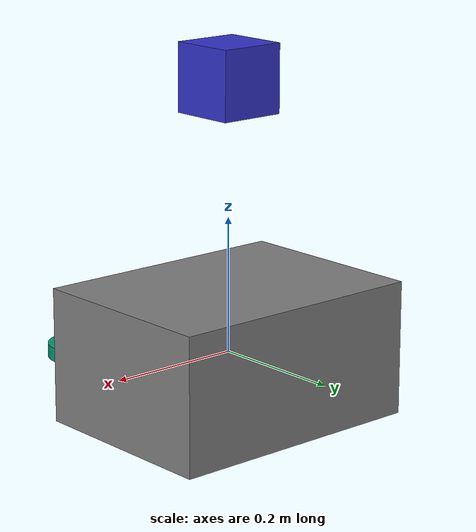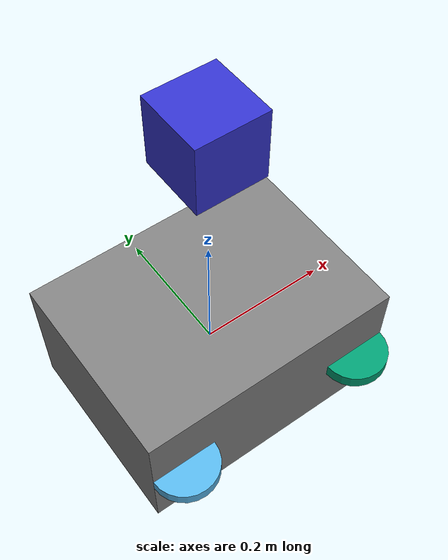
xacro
<?xml version="1.0"?>
<robot xmlns:xacro="http://ros.org/wiki/xacro" name="rover">

  <!-- Base link -->
  <link name="base_link">
    <visual>
      <geometry>
        <box size="0.4 0.3 0.2"/>
      </geometry>
      <origin xyz="0 0 0" rpy="0 0 0"/>
      <material name="gray">
        <color rgba="0.5 0.5 0.5 1.0"/>
      </material>
    </visual>
    <inertial>
      <mass value="5.0"/>
      <origin xyz="0 0 0" rpy="0 0 0"/>
      <inertia ixx="0.1" ixy="0.0" ixz="0.0" iyy="0.1" iyz="0.0" izz="0.1"/>
    </inertial>
  </link>

  <!-- Wheel macro -->
  <xacro:macro name="wheel" params="prefix x">
    <link name="${prefix}_wheel">
      <visual>
        <geometry>
          <cylinder radius="0.05" length="0.02"/>
        </geometry>
        <origin xyz="0 0 0" rpy="0 0 0"/>
      </visual>
      <inertial>
        <mass value="0.1"/>
        <origin xyz="0 0 0" rpy="0 0 0"/>
        <inertia ixx="0.0001" ixy="0.0" ixz="0.0"
                 iyy="0.0001" iyz="0.0"
                 izz="0.0001"/>
      </inertial>
    </link>

    <joint name="${prefix}_joint" type="continuous">
      <origin xyz="${x} -0.15 0" rpy="0 0 0"/>
      <parent link="base_link"/>
      <child link="${prefix}_wheel"/>
      <axis xyz="0 1 0"/>
    </joint>
  </xacro:macro>

  <!-- Instantiate wheels -->
  <xacro:wheel prefix="left" x="-0.15"/>
  <xacro:wheel prefix="right" x="0.15"/>

  <!-- Camera link -->
  <link name="camera_link">
    <visual>
      <geometry>
        <box size="0.1 0.1 0.1"/>
      </geometry>
      <origin xyz="0 0 0.2" rpy="0 0 0"/>
      <material name="blue">
        <color rgba="0.2 0.2 0.8 1.0"/>
      </material>
    </visual>
    <inertial>
      <mass value="0.05"/>
      <origin xyz="0 0 0" rpy="0 0 0"/>
      <inertia ixx="0.00005" ixy="0.0" ixz="0.0"
               iyy="0.00005" iyz="0.0"
               izz="0.00005"/>
    </inertial>
  </link>

  <joint name="camera_joint" type="fixed">
    <parent link="base_link"/>
    <child link="camera_link"/>
    <origin xyz="0 0 0.2" rpy="0 0 0"/>
  </joint>

  <!-- Transmissions -->
  <transmission name="left_trans">
    <type>transmission_interface/SimpleTransmission</type>
    <joint name="left_joint">
      <hardwareInterface>hardware_interface/EffortJointInterface</hardwareInterface>
    </joint>
    <actuator name="left_motor">
      <hardwareInterface>hardware_interface/EffortJointInterface</hardwareInterface>
      <mechanicalReduction>1</mechanicalReduction>
    </actuator>
  </transmission>

  <transmission name="right_trans">
    <type>transmission_interface/SimpleTransmission</type>
    <joint name="right_joint">
      <hardwareInterface>hardware_interface/EffortJointInterface</hardwareInterface>
    </joint>
    <actuator name="right_motor">
      <hardwareInterface>hardware_interface/EffortJointInterface</hardwareInterface>
      <mechanicalReduction>1</mechanicalReduction>
    </actuator>
  </transmission>

  <!-- Gazebo plugins -->
  <gazebo>
    <plugin name="gazebo_ros_control" filename="libgazebo_ros_control.so"/>
  </gazebo>

  <gazebo reference="base_link">
    <plugin name="gazebo_ros_diff_drive" filename="libgazebo_ros_diff_drive.so">
      <ros>
        <namespace>/</namespace>
        <remapping>cmd_vel:=/cmd_vel</remapping>
      </ros>
      <leftJoint>left_joint</leftJoint>
      <rightJoint>right_joint</rightJoint>
      <wheelSeparation>0.3</wheelSeparation>
      <wheelDiameter>0.1</wheelDiameter>
      <torque>5.0</torque>
      <commandTopic>cmd_vel</commandTopic>
      <odometryTopic>odom</odometryTopic>
      <odometryFrame>odom</odometryFrame>
      <robotBaseFrame>base_link</robotBaseFrame>
      <publishWheelTF>true</publishWheelTF>
      <publishTf>true</publishTf>
      <legacyMode>false</legacyMode>
    </plugin>
  </gazebo>

  <gazebo reference="camera_link">
    <sensor type="camera" name="camera_sensor">
      <always_on>true</always_on>
      <update_rate>30.0</update_rate>
      <camera>
        <horizontal_fov>1.3962634</horizontal_fov>
        <image>
          <width>640</width>
          <height>480</height>
          <format>R8G8B8</format>
        </image>
        <clip>
          <near>0.1</near>
          <far>100</far>
        </clip>
      </camera>
    </sensor>

    <plugin name="gazebo_ros_camera" filename="libgazebo_ros_camera.so">
      <cameraName>camera</cameraName>
      <imageTopicName>image_raw</imageTopicName>
      <cameraInfoTopicName>camera_info</cameraInfoTopicName>
      <frameName>camera_link</frameName>
      <updateRate>30.0</updateRate>
    </plugin>
  </gazebo>

</robot>
